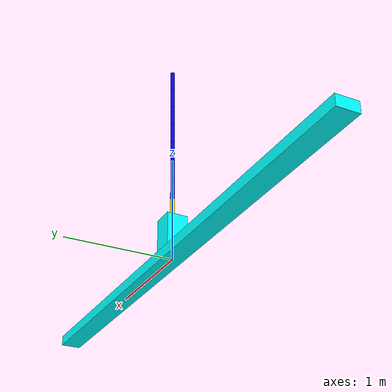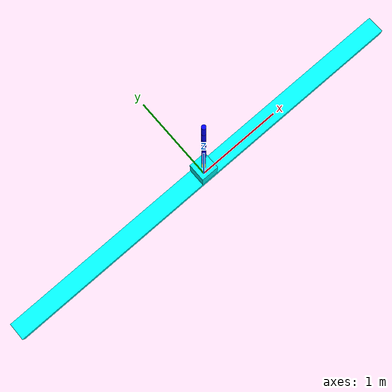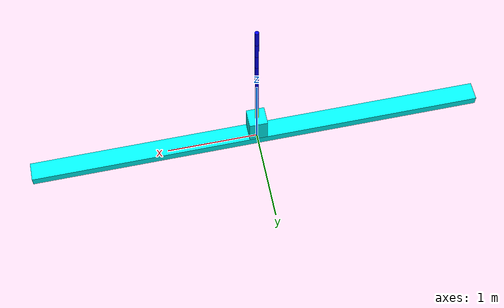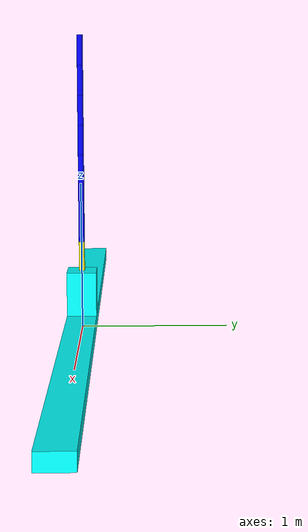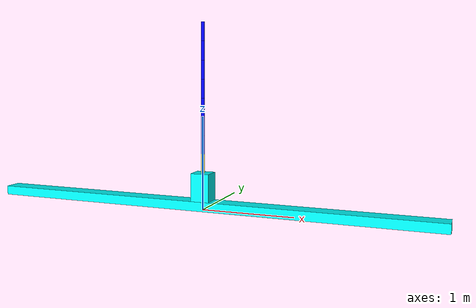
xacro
<?xml version="1.0"?>

<robot name="kuka_model" xmlns:xacro="http://wiki.ros.org/xacro">
	<xacro:include filename="$(find kuka_model)/urdf/kuka_model_def_macro.xacro" />

		<link name="slide">
			<visual>
				<geometry>
					<box size="5 0.2 0.1"/>
				</geometry>
				<origin rpy="0 0 0" xyz="0 0 0.05"/>
				<material name="Cyan">
					<color rgba="0 1.0 1.0 1.0"/>
				</material>
			</visual>
			<collision>
				<geometry>
					<box size="5 0.2 0.1"/>
				</geometry>
				<origin rpy="0 0 0" xyz="0 0 0.05"/>
			</collision>
			<inertial>
				<mass value="1"/>
				<inertia ixx="1.0" ixy="0.0" ixz="0.0" iyy="1.0" iyz="0.0" izz="1.0"/>
			</inertial>
		</link>

		<joint name="prism_slide" type="prismatic">
			<parent link="slide"/>
			<child link="box_slide"/>
	            <limit effort="10" velocity="1" lower="-2.3" upper="2.3"/>
	            <origin xyz="0 0 0.1" />
			<axis xyz="1 0 0"/>
			<dynamics damping="50" friction="1"/>
		</joint>

		<link name="box_slide">
			<visual>
				<geometry>
					<box size="0.2 0.2 0.3"/>
				</geometry>
				<origin rpy="0 0 0" xyz="0 0 0.15"/>
				<material name="Cyan">
					<color rgba="0 1.0 1.0 1.0"/>
				</material>
			</visual>
			<collision>
				<geometry>
					<box size="0.2 0.2 0.3"/>
				</geometry>
				<origin rpy="0 0 0" xyz="0 0 0.15"/>
			</collision>
			<inertial>
				<mass value="1"/>
				<inertia ixx="1.0" ixy="0.0" ixz="0.0" iyy="1.0" iyz="0.0" izz="1.0"/>
			</inertial>
		</link>

		<joint name="fixed_joint" type="fixed">
			<parent link="box_slide"/>
			<child link="base_link"/>
			<origin xyz="0 0 0.3"/>
		</joint>

	<xacro:include filename="$(find kuka_model)/urdf/kuka_model_def.xacro" />

</robot>

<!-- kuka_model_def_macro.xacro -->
<robot name="kuka_model_macro" xmlns:xacro="http://wiki.ros.org/xacro">

	<xacro:macro name="base_link_macro" params="base_link_name">
		<link name="${base_link_name}">
			<visual>
				<geometry>
					<cylinder length="0.2" radius="0.02"/>
				</geometry>
				<origin rpy="0 0 0" xyz="0 0 0.1"/>
					<material name="yellow">
						<color rgba="1 1 0 1"/>
					</material>
			</visual>
			<collision>
				<geometry>
					<cylinder length="0.21" radius="0.2"/>
				</geometry>
				<origin rpy="0 0 0" xyz="0 0 0.1"/>
			</collision>
			<inertial>
				<mass value="1"/>
				<inertia ixx="1.0" ixy="0.0" ixz="0.0" iyy="1.0" iyz="0.0" izz="1.0"/>
			</inertial>
		</link>
	</xacro:macro>

	<xacro:macro name="kuka_joint" params="name type parent max_veloc max_effort width_lim child *origin *axis">
		<joint name="${name}" type="${type}">
			<parent link="${parent}"/>
			<child link="${child}"/>
	            <limit effort="${max_effort}" velocity="${max_veloc}" lower="${-width_lim/2*(3.14/180)}" upper="${width_lim/2*(3.14/180)}"/>
	            <xacro:insert_block name="origin"/>
			<xacro:insert_block name="axis"/>
	    		<dynamics damping="50" friction="1"/>
		</joint>
	</xacro:macro>

	<xacro:macro name="kuka_link" params="name *origin">
		<link name="${name}">
			<visual>
				<geometry>
				<cylinder length="0.2" radius="0.02"/>
				</geometry>
				<xacro:insert_block name="origin"/>
		    		<material name="red">
		      		<color rgba="0 0 1 1"/>
		    		</material>
		  	</visual>
		  	<collision>
		  		<geometry>
		  			<cylinder length="0.21" radius="0.03"/>
		  		</geometry>
		  		<xacro:insert_block name="origin"/>
			</collision>
			<inertial>
				<mass value="1"/>
				<inertia ixx="1.0" ixy="0.0" ixz="0.0" iyy="1.0" iyz="0.0" izz="1.0"/>
		  	</inertial>
	 	</link>
	</xacro:macro>

</robot>

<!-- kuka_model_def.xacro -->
<robot name="kuka_model" xmlns:xacro="http://wiki.ros.org/xacro">
    <xacro:include filename="$(find kuka_model)/urdf/kuka_model_def_macro.xacro" />

		<xacro:base_link_macro
			base_link_name="base_link">
		</xacro:base_link_macro>

		<xacro:kuka_joint
			name="joint_1"
			type="revolute"
			parent="base_link"
			max_veloc = "98"
			max_effort = "176"
			width_lim = "170"
			child="link_1">
			<origin xyz="0 0 0.2" />
			<axis xyz="0 0 1"/>
		</xacro:kuka_joint>

		<xacro:kuka_link name="link_1">
			<origin xyz="0 0 0.1" rpy="0 0 0"/>
		</xacro:kuka_link>

		<xacro:kuka_joint
			name="joint_2"
			type="revolute"
			parent="link_1"
			max_veloc = "98"
			max_effort = "100"
			width_lim = "120"
			child="link_2">
			<origin xyz="0 0 0.2" />
			<axis xyz="1 0 0"/>
		</xacro:kuka_joint>

		<xacro:kuka_link name="link_2">
			<origin xyz="0 0 0.1" rpy="0 0 0"/>
		</xacro:kuka_link>

		<xacro:kuka_joint
			name="joint_3"
			type="revolute"
			parent="link_2"
			max_veloc = "100"
			max_effort = "110"
			width_lim = "170"
			child="link_3">
			<origin xyz="0 0 0.2" />
			<axis xyz="0 0 1"/>
		</xacro:kuka_joint>

		<xacro:kuka_link name="link_3">
			<origin xyz="0 0 0.1" rpy="0 0 0"/>
		</xacro:kuka_link>

		<xacro:kuka_joint
			name="joint_4"
			type="revolute"
			parent="link_3"
			max_veloc = "130.0"
			max_effort = "110"
			width_lim = "120"
			child="link_4">
			<origin xyz="0 0 0.2" />
			<axis xyz="1 0 0"/>
		</xacro:kuka_joint>

		<xacro:kuka_link name="link_4">
			<origin xyz="0 0 0.1" rpy="0 0 0"/>
		</xacro:kuka_link>

		<xacro:kuka_joint
			name="joint_5"
			type="revolute"
			parent="link_4"
			max_veloc = "140"
			max_effort = "110"
			width_lim = "170"
			child="link_5">
			<origin xyz="0 0 0.2"/>
			<axis xyz="0 0 1"/>
		</xacro:kuka_joint>

		<xacro:kuka_link name="link_5">
			<origin xyz="0 0 0.1" rpy="0 0 0"/>
		</xacro:kuka_link>

		<xacro:kuka_joint
			name="joint_6"
			type="revolute"
			parent="link_5"
			max_veloc = "180"
			max_effort = "40"
			width_lim = "120"
			child="link_6">
			<origin xyz="0 0 0.2"/>
			<axis xyz="1 0 0"/>
		</xacro:kuka_joint>

		<xacro:kuka_link name="link_6">
			<origin xyz="0 0 0.1" rpy="0 0 0"/>
		</xacro:kuka_link>

		<xacro:kuka_joint
			name="joint_7"
			type="revolute"
			parent="link_6"
			max_veloc = "180"
			max_effort = "40"
			width_lim = "175"
			child="link_7">
			<origin xyz="0 0 0.2"/>
			<axis xyz="0 0 1"/>
		</xacro:kuka_joint>

		<xacro:kuka_link name="link_7">
			<origin xyz="0 0 0.1" rpy="0 0 0"/>
		</xacro:kuka_link>

</robot>
